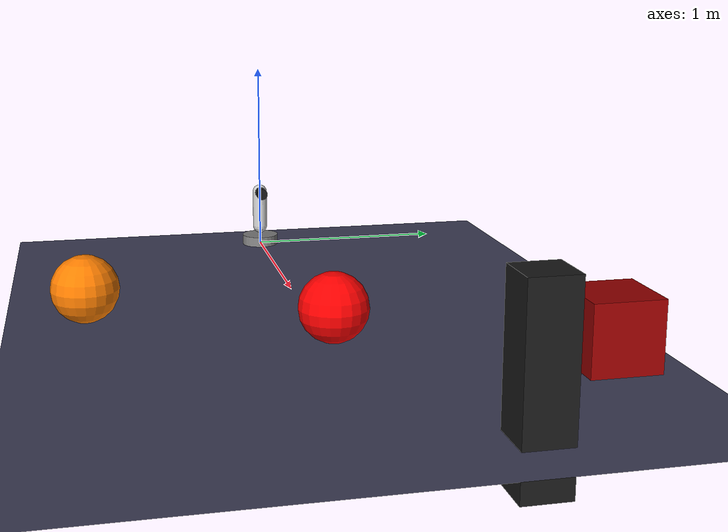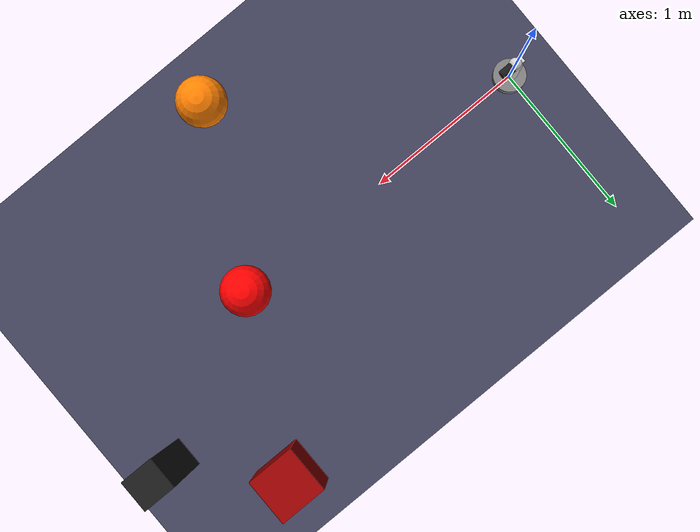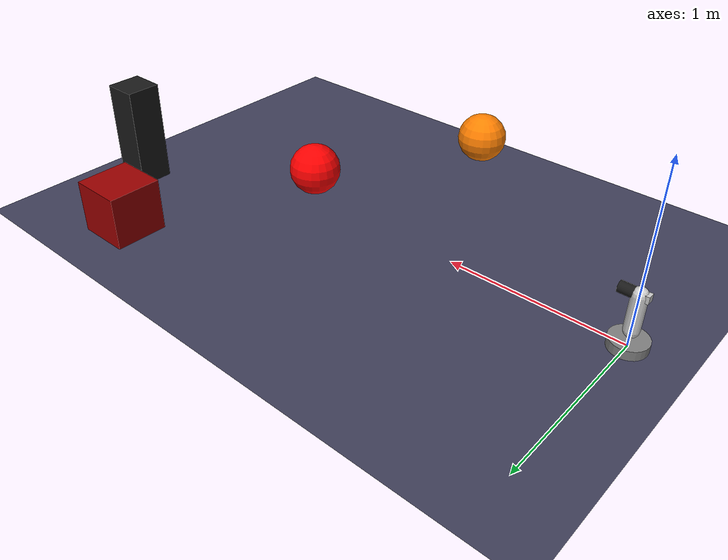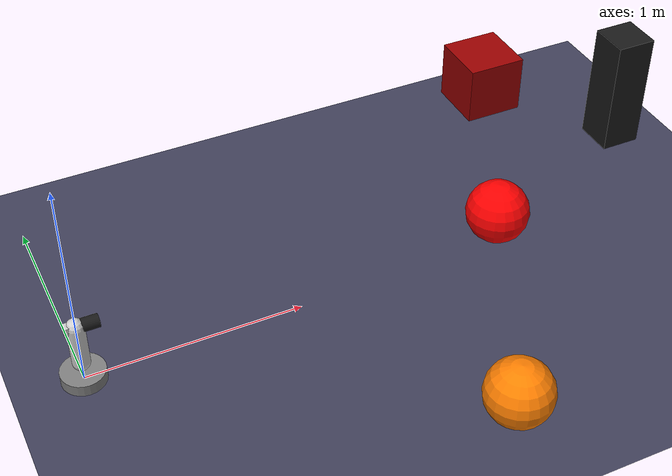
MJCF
<mujoco>
  <option timestep="0.005" gravity="0 0 -9.81"/>

  <visual>
    <global offwidth="640" offheight="480"/>
  </visual>

  <asset>
    <texture type="skybox" file="skybox_cube.png" gridsize="3 4" gridlayout=".U..LFRB.D.."/>
    <texture name="grid" type="2d" builtin="checker" width="512" height="512" rgb1=".2 .2 .3" rgb2=".3 .3 .4"/>
    <material name="grid" texture="grid" texrepeat="1 1" texuniform="true" reflectance="0"/>
    <material name="glow_red" rgba="1 0 0 1" emission="1"/>
  </asset>

  <worldbody>
    <light pos="0 0 5" dir="0 0 -1" directional="true"/>
    <geom name="floor" type="plane" size="5 5 0.1" material="grid"/>

    <!-- THE ROBOT TURRET -->
    <body name="turret_base" pos="0 0 0">
        <geom type="cylinder" size=".1 .05" rgba=".5 .5 .5 1"/>

        <!-- Pan Link (Rotate Left/Right) -->
        <body name="pan_link" pos="0 0 .1">
            <joint name="pan" type="hinge" axis="0 0 1" damping="0.5" limited="true" range="-1.5 1.5"/>
            <geom type="capsule" fromto="0 0 0 0 0 .2" size=".04" rgba=".8 .8 .8 1" mass="1"/>

            <!-- Tilt Link (Rotate Up/Down) -->
            <body name="tilt_link" pos="0 0 .2">
                <joint name="tilt" type="hinge" axis="0 1 0" damping="0.5" limited="true" range="-0.5 0.5"/>
                <geom type="box" size=".05 .02 .02" rgba=".8 .8 .8 1" mass="0.5"/>

                <!-- THE CAMERA -->
                <camera name="eye" pos="0.1 0 0" euler="90 270 0" fovy="45"/>
                <geom type="cylinder" fromto="0 0 0 0.1 0 0" size=".03" rgba="0.1 0.1 0.1 1" mass="0.2"/>
            </body>
        </body>
    </body>

    <!-- THE TARGET (Glowing Red Sphere) -->
    <body name="target" pos="2 0 0.2">
        <joint type="slide" axis="1 0 0"/>
        <joint type="slide" axis="0 1 0"/>
        <geom type="sphere" size="0.15" material="glow_red"/>
    </body>

    <!-- DISTRACTORS -->
    <body name="distractor1" pos="2.5 1 0.2">
        <geom type="box" size="0.15 0.15 0.15" rgba="0.6 0 0 1"/>
    </body>
    <body name="distractor2" pos="1.5 -1 0.2">
        <geom type="sphere" size="0.15" rgba="1 0.5 0 1"/>
    </body>
    <body name="distractor3" pos="3 0.5 0.2">
        <geom type="box" size="0.1 0.1 0.4" rgba="0.1 0.1 0.1 1"/>
    </body>

  </worldbody>

  <actuator>
    <!-- Position servos for stability -->
    <position joint="pan" kp="50"/>
    <position joint="tilt" kp="50"/>
  </actuator>
</mujoco>
